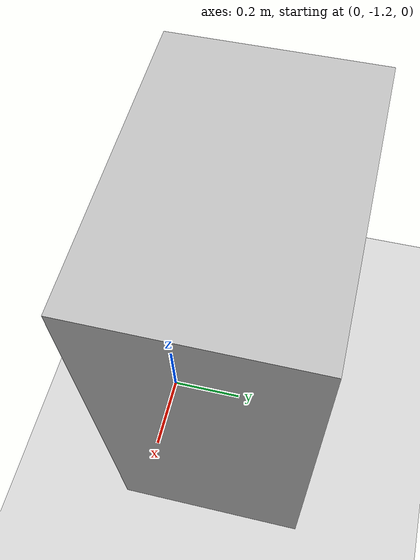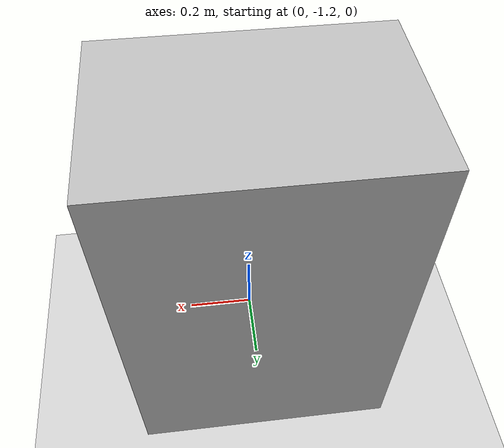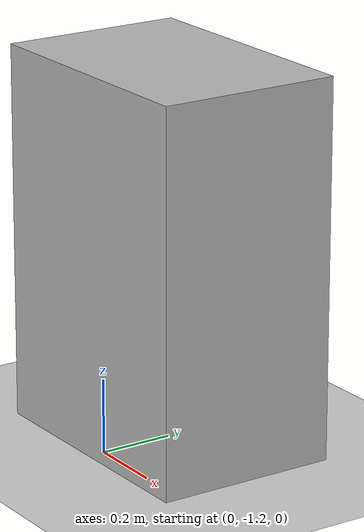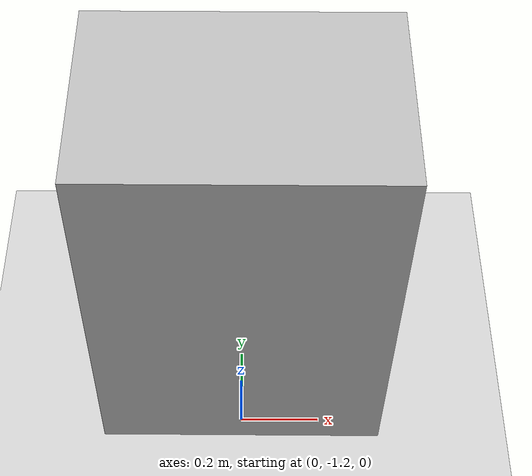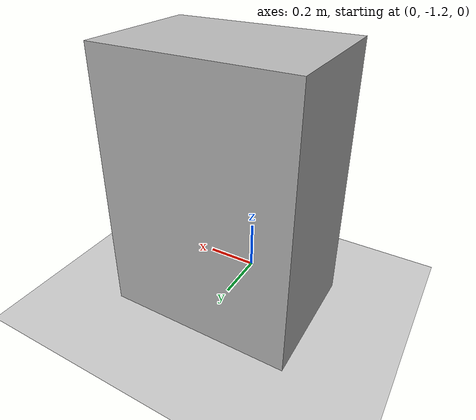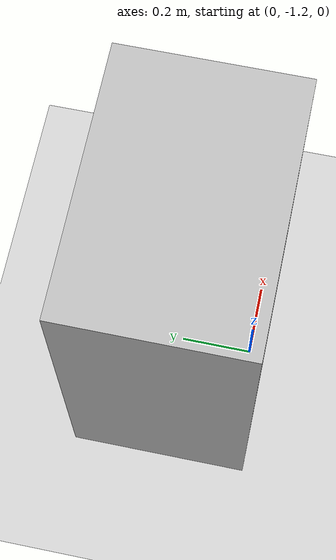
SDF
<?xml version="1.0"?>
<sdf version="1.6">
  <world name="learn_objects">
    <light name="sun" type="directional">
      <direction>0.5 0.1 -0.9</direction>
      <pose>0 0 10 0 0 0</pose>
      <specular>0.2 0.2 0.2 1</specular>
      <cast_shadows>true</cast_shadows>
      <diffuse>0.8 0.8 0.8 1</diffuse>
      <attenuation>
        <range>1000</range>
        <quadratic>0.001</quadratic>
        <constant>0.9</constant>
        <linear>0.01</linear>
      </attenuation>
    </light>
    <include>
      <pose>0 0 0 0 0 0</pose>
      <name>floor</name>
      <uri>model://ground_plane</uri>
    </include>
    <include>
      <pose>0 -1 0 0 0 1.57</pose>
      <name>hero_case</name>
      <uri>model://hero_case</uri>
    </include>
    <physics type="ode">
      <real_time_update_rate>333.0</real_time_update_rate>
      <max_step_size>0.003</max_step_size>
      <ode>
        <constraints>
          <cfm>0.0001</cfm>
        </constraints>
        <solver>
          <type>quick</type>
          <iters>100</iters>
        </solver>
      </ode>
    </physics>
  </world>
</sdf>

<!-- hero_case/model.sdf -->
<sdf version="1.6">
  <model name="floor">
    <link name="1_link">
      <collision name="1_col">
        <geometry>
          <box>
            <size>0.5 0.6 1.2</size>
          </box>
        </geometry>
      </collision>
      <visual name="1_vis">
        <geometry>
          <box>
            <size>0.49 0.71 1.01</size>
          </box>
        </geometry>
      </visual>
      <pose>0 0 0.505 0 0 0</pose>
    </link>
    <link name="on_top_of">
      <virtual_volume name="on_top_of_vv">
        <geometry>
          <box>
            <size>0.49 0.71 0.4</size>
          </box>
        </geometry>
        <pose>0.0 0.0 1.25 0 0 0</pose>
      </virtual_volume>
    </link>
    <static>true</static>
  </model>
</sdf>
